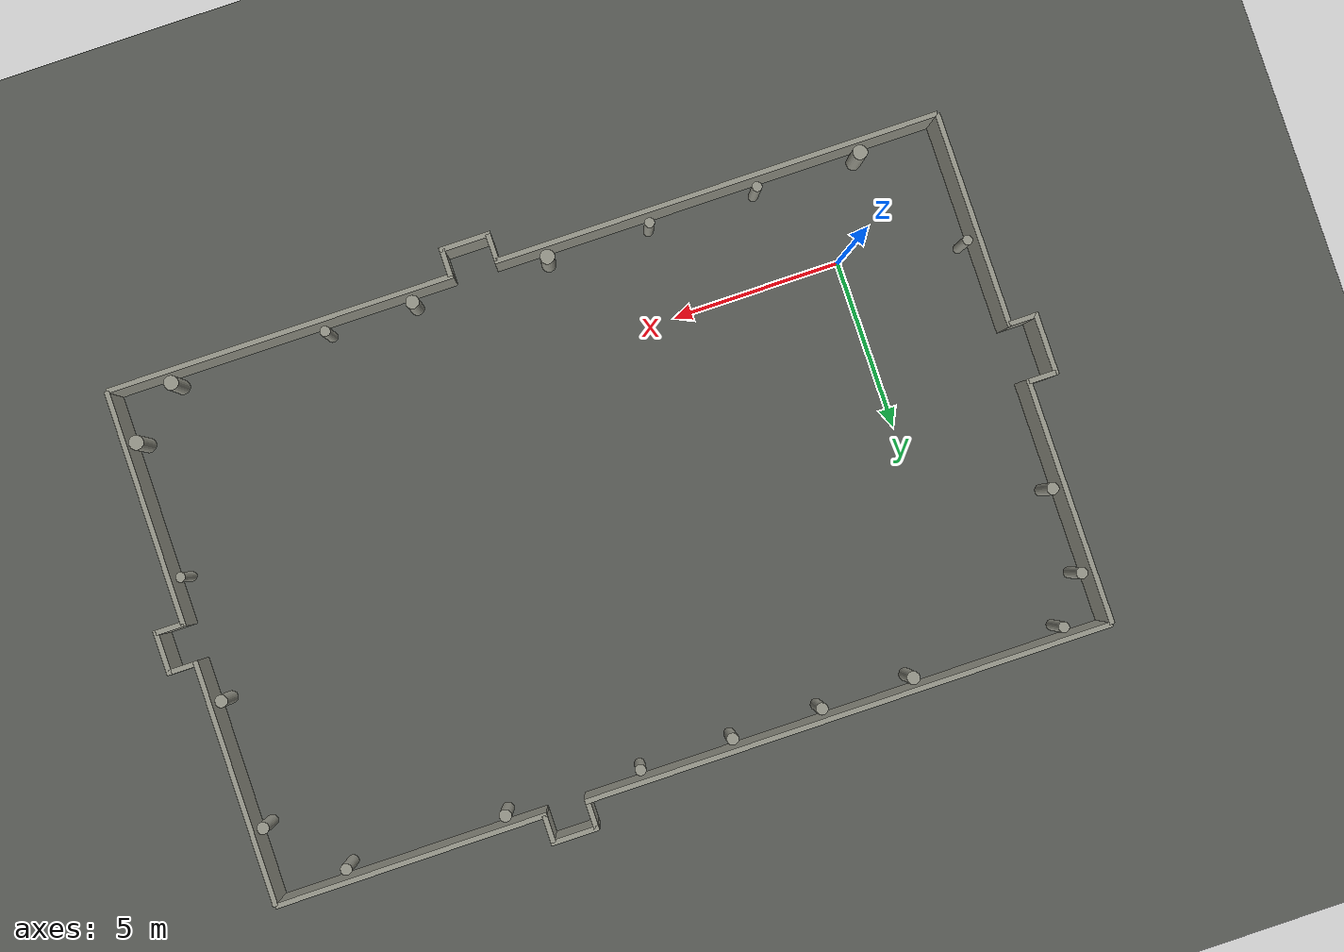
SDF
<sdf version="1.9">
 <world name="default">
  <model name="track_ground">
   <static>true</static>
   <link name="ground_link">
    <collision name="ground_collision">
     <pose>8.340823 4.634097 -0.025000 0.000000 0.000000 0.000000</pose>
     <geometry><box><size>80.000000 80.000000 0.050000</size></box></geometry>
     <surface>
      <friction><ode><mu>1.2</mu><mu2>1.2</mu2></ode></friction>
      <contact><ode><kp>100000.0</kp><kd>10.0</kd></ode></contact>
     </surface>
    </collision>
    <visual name="ground_visual">
     <pose>8.340823 4.634097 -0.025000 0.000000 0.000000 0.000000</pose>
     <geometry><box><size>80.000000 80.000000 0.050000</size></box></geometry>
     <material><ambient>0.35 0.36 0.34 1</ambient><diffuse>0.35 0.36 0.34 1</diffuse></material>
    </visual>
   </link>
  </model>
  <model name="track_room">
   <static>true</static>
   <link name="room_link">
    <collision name="hall_0_0_collision">
     <pose>2.814898 -3.000000 0.600000 0.000000 0.000000 0.000000</pose>
     <geometry><box><size>13.269511 0.150000 1.200000</size></box></geometry>
    </collision>
    <visual name="hall_0_0_visual">
     <pose>2.814898 -3.000000 0.600000 0.000000 0.000000 0.000000</pose>
     <geometry><box><size>13.269511 0.150000 1.200000</size></box></geometry>
     <material><ambient>0.6 0.6 0.55 1</ambient><diffuse>0.6 0.6 0.55 1</diffuse></material>
    </visual>
    <collision name="hall_0_144_collision">
     <pose>15.849699 -3.000000 0.600000 0.000000 0.000000 0.000000</pose>
     <geometry><box><size>10.340784 0.150000 1.200000</size></box></geometry>
    </collision>
    <visual name="hall_0_144_visual">
     <pose>15.849699 -3.000000 0.600000 0.000000 0.000000 0.000000</pose>
     <geometry><box><size>10.340784 0.150000 1.200000</size></box></geometry>
     <material><ambient>0.6 0.6 0.55 1</ambient><diffuse>0.6 0.6 0.55 1</diffuse></material>
    </visual>
    <collision name="hall_niche_0_collision">
     <pose>10.064480 -3.800000 0.600000 0.000000 0.000000 0.000000</pose>
     <geometry><box><size>1.529654 0.150000 1.200000</size></box></geometry>
    </collision>
    <visual name="hall_niche_0_visual">
     <pose>10.064480 -3.800000 0.600000 0.000000 0.000000 0.000000</pose>
     <geometry><box><size>1.529654 0.150000 1.200000</size></box></geometry>
     <material><ambient>0.6 0.6 0.55 1</ambient><diffuse>0.6 0.6 0.55 1</diffuse></material>
    </visual>
    <collision name="hall_jamb_0_-1_collision">
     <pose>9.374653 -3.400000 0.600000 0.000000 0.000000 0.000000</pose>
     <geometry><box><size>0.150000 0.800000 1.200000</size></box></geometry>
    </collision>
    <visual name="hall_jamb_0_-1_visual">
     <pose>9.374653 -3.400000 0.600000 0.000000 0.000000 0.000000</pose>
     <geometry><box><size>0.150000 0.800000 1.200000</size></box></geometry>
     <material><ambient>0.6 0.6 0.55 1</ambient><diffuse>0.6 0.6 0.55 1</diffuse></material>
    </visual>
    <collision name="hall_jamb_0_1_collision">
     <pose>10.754307 -3.400000 0.600000 0.000000 0.000000 0.000000</pose>
     <geometry><box><size>0.150000 0.800000 1.200000</size></box></geometry>
    </collision>
    <visual name="hall_jamb_0_1_visual">
     <pose>10.754307 -3.400000 0.600000 0.000000 0.000000 0.000000</pose>
     <geometry><box><size>0.150000 0.800000 1.200000</size></box></geometry>
     <material><ambient>0.6 0.6 0.55 1</ambient><diffuse>0.6 0.6 0.55 1</diffuse></material>
    </visual>
    <collision name="hall_1_0_collision">
     <pose>21.020091 0.500888 0.600000 0.000000 0.000000 1.570796</pose>
     <geometry><box><size>7.001776 0.150000 1.200000</size></box></geometry>
    </collision>
    <visual name="hall_1_0_visual">
     <pose>21.020091 0.500888 0.600000 0.000000 0.000000 1.570796</pose>
     <geometry><box><size>7.001776 0.150000 1.200000</size></box></geometry>
     <material><ambient>0.6 0.6 0.55 1</ambient><diffuse>0.6 0.6 0.55 1</diffuse></material>
    </visual>
    <collision name="hall_1_80_collision">
     <pose>21.020091 8.650910 0.600000 0.000000 0.000000 1.570796</pose>
     <geometry><box><size>7.244498 0.150000 1.200000</size></box></geometry>
    </collision>
    <visual name="hall_1_80_visual">
     <pose>21.020091 8.650910 0.600000 0.000000 0.000000 1.570796</pose>
     <geometry><box><size>7.244498 0.150000 1.200000</size></box></geometry>
     <material><ambient>0.6 0.6 0.55 1</ambient><diffuse>0.6 0.6 0.55 1</diffuse></material>
    </visual>
    <collision name="hall_niche_1_collision">
     <pose>21.820091 4.515219 0.600000 0.000000 0.000000 1.570796</pose>
     <geometry><box><size>1.326885 0.150000 1.200000</size></box></geometry>
    </collision>
    <visual name="hall_niche_1_visual">
     <pose>21.820091 4.515219 0.600000 0.000000 0.000000 1.570796</pose>
     <geometry><box><size>1.326885 0.150000 1.200000</size></box></geometry>
     <material><ambient>0.6 0.6 0.55 1</ambient><diffuse>0.6 0.6 0.55 1</diffuse></material>
    </visual>
    <collision name="hall_jamb_1_-1_collision">
     <pose>21.420091 3.926776 0.600000 0.000000 0.000000 1.570796</pose>
     <geometry><box><size>0.150000 0.800000 1.200000</size></box></geometry>
    </collision>
    <visual name="hall_jamb_1_-1_visual">
     <pose>21.420091 3.926776 0.600000 0.000000 0.000000 1.570796</pose>
     <geometry><box><size>0.150000 0.800000 1.200000</size></box></geometry>
     <material><ambient>0.6 0.6 0.55 1</ambient><diffuse>0.6 0.6 0.55 1</diffuse></material>
    </visual>
    <collision name="hall_jamb_1_1_collision">
     <pose>21.420091 5.103661 0.600000 0.000000 0.000000 1.570796</pose>
     <geometry><box><size>0.150000 0.800000 1.200000</size></box></geometry>
    </collision>
    <visual name="hall_jamb_1_1_visual">
     <pose>21.420091 5.103661 0.600000 0.000000 0.000000 1.570796</pose>
     <geometry><box><size>0.150000 0.800000 1.200000</size></box></geometry>
     <material><ambient>0.6 0.6 0.55 1</ambient><diffuse>0.6 0.6 0.55 1</diffuse></material>
    </visual>
    <collision name="hall_2_0_collision">
     <pose>17.004132 12.273159 0.600000 0.000000 0.000000 3.141593</pose>
     <geometry><box><size>8.031919 0.150000 1.200000</size></box></geometry>
    </collision>
    <visual name="hall_2_0_visual">
     <pose>17.004132 12.273159 0.600000 0.000000 0.000000 3.141593</pose>
     <geometry><box><size>8.031919 0.150000 1.200000</size></box></geometry>
     <material><ambient>0.6 0.6 0.55 1</ambient><diffuse>0.6 0.6 0.55 1</diffuse></material>
    </visual>
    <collision name="hall_2_91_collision">
     <pose>4.021784 12.273159 0.600000 0.000000 0.000000 3.141593</pose>
     <geometry><box><size>15.683284 0.150000 1.200000</size></box></geometry>
    </collision>
    <visual name="hall_2_91_visual">
     <pose>4.021784 12.273159 0.600000 0.000000 0.000000 3.141593</pose>
     <geometry><box><size>15.683284 0.150000 1.200000</size></box></geometry>
     <material><ambient>0.6 0.6 0.55 1</ambient><diffuse>0.6 0.6 0.55 1</diffuse></material>
    </visual>
    <collision name="hall_niche_2_collision">
     <pose>12.425799 13.073159 0.600000 0.000000 0.000000 3.141593</pose>
     <geometry><box><size>1.424746 0.150000 1.200000</size></box></geometry>
    </collision>
    <visual name="hall_niche_2_visual">
     <pose>12.425799 13.073159 0.600000 0.000000 0.000000 3.141593</pose>
     <geometry><box><size>1.424746 0.150000 1.200000</size></box></geometry>
     <material><ambient>0.6 0.6 0.55 1</ambient><diffuse>0.6 0.6 0.55 1</diffuse></material>
    </visual>
    <collision name="hall_jamb_2_-1_collision">
     <pose>13.063172 12.673159 0.600000 0.000000 0.000000 3.141593</pose>
     <geometry><box><size>0.150000 0.800000 1.200000</size></box></geometry>
    </collision>
    <visual name="hall_jamb_2_-1_visual">
     <pose>13.063172 12.673159 0.600000 0.000000 0.000000 3.141593</pose>
     <geometry><box><size>0.150000 0.800000 1.200000</size></box></geometry>
     <material><ambient>0.6 0.6 0.55 1</ambient><diffuse>0.6 0.6 0.55 1</diffuse></material>
    </visual>
    <collision name="hall_jamb_2_1_collision">
     <pose>11.788426 12.673159 0.600000 0.000000 0.000000 3.141593</pose>
     <geometry><box><size>0.150000 0.800000 1.200000</size></box></geometry>
    </collision>
    <visual name="hall_jamb_2_1_visual">
     <pose>11.788426 12.673159 0.600000 0.000000 0.000000 3.141593</pose>
     <geometry><box><size>0.150000 0.800000 1.200000</size></box></geometry>
     <material><ambient>0.6 0.6 0.55 1</ambient><diffuse>0.6 0.6 0.55 1</diffuse></material>
    </visual>
    <collision name="hall_3_0_collision">
     <pose>-3.819858 8.623453 0.600000 0.000000 0.000000 -1.570796</pose>
     <geometry><box><size>7.299412 0.150000 1.200000</size></box></geometry>
    </collision>
    <visual name="hall_3_0_visual">
     <pose>-3.819858 8.623453 0.600000 0.000000 0.000000 -1.570796</pose>
     <geometry><box><size>7.299412 0.150000 1.200000</size></box></geometry>
     <material><ambient>0.6 0.6 0.55 1</ambient><diffuse>0.6 0.6 0.55 1</diffuse></material>
    </visual>
    <collision name="hall_3_88_collision">
     <pose>-3.819858 0.201437 0.600000 0.000000 0.000000 -1.570796</pose>
     <geometry><box><size>6.402874 0.150000 1.200000</size></box></geometry>
    </collision>
    <visual name="hall_3_88_visual">
     <pose>-3.819858 0.201437 0.600000 0.000000 0.000000 -1.570796</pose>
     <geometry><box><size>6.402874 0.150000 1.200000</size></box></geometry>
     <material><ambient>0.6 0.6 0.55 1</ambient><diffuse>0.6 0.6 0.55 1</diffuse></material>
    </visual>
    <collision name="hall_niche_3_collision">
     <pose>-4.619858 4.188310 0.600000 0.000000 0.000000 -1.570796</pose>
     <geometry><box><size>1.870874 0.150000 1.200000</size></box></geometry>
    </collision>
    <visual name="hall_niche_3_visual">
     <pose>-4.619858 4.188310 0.600000 0.000000 0.000000 -1.570796</pose>
     <geometry><box><size>1.870874 0.150000 1.200000</size></box></geometry>
     <material><ambient>0.6 0.6 0.55 1</ambient><diffuse>0.6 0.6 0.55 1</diffuse></material>
    </visual>
    <collision name="hall_jamb_3_-1_collision">
     <pose>-4.219858 5.048747 0.600000 0.000000 0.000000 -1.570796</pose>
     <geometry><box><size>0.150000 0.800000 1.200000</size></box></geometry>
    </collision>
    <visual name="hall_jamb_3_-1_visual">
     <pose>-4.219858 5.048747 0.600000 0.000000 0.000000 -1.570796</pose>
     <geometry><box><size>0.150000 0.800000 1.200000</size></box></geometry>
     <material><ambient>0.6 0.6 0.55 1</ambient><diffuse>0.6 0.6 0.55 1</diffuse></material>
    </visual>
    <collision name="hall_jamb_3_1_collision">
     <pose>-4.219858 3.327874 0.600000 0.000000 0.000000 -1.570796</pose>
     <geometry><box><size>0.150000 0.800000 1.200000</size></box></geometry>
    </collision>
    <visual name="hall_jamb_3_1_visual">
     <pose>-4.219858 3.327874 0.600000 0.000000 0.000000 -1.570796</pose>
     <geometry><box><size>0.150000 0.800000 1.200000</size></box></geometry>
     <material><ambient>0.6 0.6 0.55 1</ambient><diffuse>0.6 0.6 0.55 1</diffuse></material>
    </visual>
    <collision name="column_0_24_collision">
     <pose>-1.388752 -2.650000 0.600000 0.000000 0.000000 0.000000</pose>
     <geometry><cylinder><radius>0.215649</radius><length>1.200000</length></cylinder></geometry>
    </collision>
    <visual name="column_0_24_visual">
     <pose>-1.388752 -2.650000 0.600000 0.000000 0.000000 0.000000</pose>
     <geometry><cylinder><radius>0.215649</radius><length>1.200000</length></cylinder></geometry>
     <material><ambient>0.6 0.6 0.55 1</ambient><diffuse>0.6 0.6 0.55 1</diffuse></material>
    </visual>
    <collision name="column_0_55_collision">
     <pose>1.699357 -2.650000 0.600000 0.000000 0.000000 0.000000</pose>
     <geometry><cylinder><radius>0.144474</radius><length>1.200000</length></cylinder></geometry>
    </collision>
    <visual name="column_0_55_visual">
     <pose>1.699357 -2.650000 0.600000 0.000000 0.000000 0.000000</pose>
     <geometry><cylinder><radius>0.144474</radius><length>1.200000</length></cylinder></geometry>
     <material><ambient>0.6 0.6 0.55 1</ambient><diffuse>0.6 0.6 0.55 1</diffuse></material>
    </visual>
    <collision name="column_0_87_collision">
     <pose>4.923072 -2.650000 0.600000 0.000000 0.000000 0.000000</pose>
     <geometry><cylinder><radius>0.144636</radius><length>1.200000</length></cylinder></geometry>
    </collision>
    <visual name="column_0_87_visual">
     <pose>4.923072 -2.650000 0.600000 0.000000 0.000000 0.000000</pose>
     <geometry><cylinder><radius>0.144636</radius><length>1.200000</length></cylinder></geometry>
     <material><ambient>0.6 0.6 0.55 1</ambient><diffuse>0.6 0.6 0.55 1</diffuse></material>
    </visual>
    <collision name="column_0_117_collision">
     <pose>7.979928 -2.650000 0.600000 0.000000 0.000000 0.000000</pose>
     <geometry><cylinder><radius>0.212061</radius><length>1.200000</length></cylinder></geometry>
    </collision>
    <visual name="column_0_117_visual">
     <pose>7.979928 -2.650000 0.600000 0.000000 0.000000 0.000000</pose>
     <geometry><cylinder><radius>0.212061</radius><length>1.200000</length></cylinder></geometry>
     <material><ambient>0.6 0.6 0.55 1</ambient><diffuse>0.6 0.6 0.55 1</diffuse></material>
    </visual>
    <collision name="column_0_158_collision">
     <pose>12.013888 -2.650000 0.600000 0.000000 0.000000 0.000000</pose>
     <geometry><cylinder><radius>0.197035</radius><length>1.200000</length></cylinder></geometry>
    </collision>
    <visual name="column_0_158_visual">
     <pose>12.013888 -2.650000 0.600000 0.000000 0.000000 0.000000</pose>
     <geometry><cylinder><radius>0.197035</radius><length>1.200000</length></cylinder></geometry>
     <material><ambient>0.6 0.6 0.55 1</ambient><diffuse>0.6 0.6 0.55 1</diffuse></material>
    </visual>
    <collision name="column_0_184_collision">
     <pose>14.620369 -2.650000 0.600000 0.000000 0.000000 0.000000</pose>
     <geometry><cylinder><radius>0.153036</radius><length>1.200000</length></cylinder></geometry>
    </collision>
    <visual name="column_0_184_visual">
     <pose>14.620369 -2.650000 0.600000 0.000000 0.000000 0.000000</pose>
     <geometry><cylinder><radius>0.153036</radius><length>1.200000</length></cylinder></geometry>
     <material><ambient>0.6 0.6 0.55 1</ambient><diffuse>0.6 0.6 0.55 1</diffuse></material>
    </visual>
    <collision name="column_0_230_collision">
     <pose>19.210519 -2.650000 0.600000 0.000000 0.000000 0.000000</pose>
     <geometry><cylinder><radius>0.214722</radius><length>1.200000</length></cylinder></geometry>
    </collision>
    <visual name="column_0_230_visual">
     <pose>19.210519 -2.650000 0.600000 0.000000 0.000000 0.000000</pose>
     <geometry><cylinder><radius>0.214722</radius><length>1.200000</length></cylinder></geometry>
     <material><ambient>0.6 0.6 0.55 1</ambient><diffuse>0.6 0.6 0.55 1</diffuse></material>
    </visual>
    <collision name="column_1_16_collision">
     <pose>20.670091 -1.352916 0.600000 0.000000 0.000000 0.000000</pose>
     <geometry><cylinder><radius>0.214528</radius><length>1.200000</length></cylinder></geometry>
    </collision>
    <visual name="column_1_16_visual">
     <pose>20.670091 -1.352916 0.600000 0.000000 0.000000 0.000000</pose>
     <geometry><cylinder><radius>0.214528</radius><length>1.200000</length></cylinder></geometry>
     <material><ambient>0.6 0.6 0.55 1</ambient><diffuse>0.6 0.6 0.55 1</diffuse></material>
    </visual>
    <collision name="column_1_56_collision">
     <pose>20.670091 2.655002 0.600000 0.000000 0.000000 0.000000</pose>
     <geometry><cylinder><radius>0.142347</radius><length>1.200000</length></cylinder></geometry>
    </collision>
    <visual name="column_1_56_visual">
     <pose>20.670091 2.655002 0.600000 0.000000 0.000000 0.000000</pose>
     <geometry><cylinder><radius>0.142347</radius><length>1.200000</length></cylinder></geometry>
     <material><ambient>0.6 0.6 0.55 1</ambient><diffuse>0.6 0.6 0.55 1</diffuse></material>
    </visual>
    <collision name="column_1_93_collision">
     <pose>20.670091 6.334511 0.600000 0.000000 0.000000 0.000000</pose>
     <geometry><cylinder><radius>0.183271</radius><length>1.200000</length></cylinder></geometry>
    </collision>
    <visual name="column_1_93_visual">
     <pose>20.670091 6.334511 0.600000 0.000000 0.000000 0.000000</pose>
     <geometry><cylinder><radius>0.183271</radius><length>1.200000</length></cylinder></geometry>
     <material><ambient>0.6 0.6 0.55 1</ambient><diffuse>0.6 0.6 0.55 1</diffuse></material>
    </visual>
    <collision name="column_1_130_collision">
     <pose>20.670091 10.088768 0.600000 0.000000 0.000000 0.000000</pose>
     <geometry><cylinder><radius>0.175561</radius><length>1.200000</length></cylinder></geometry>
    </collision>
    <visual name="column_1_130_visual">
     <pose>20.670091 10.088768 0.600000 0.000000 0.000000 0.000000</pose>
     <geometry><cylinder><radius>0.175561</radius><length>1.200000</length></cylinder></geometry>
     <material><ambient>0.6 0.6 0.55 1</ambient><diffuse>0.6 0.6 0.55 1</diffuse></material>
    </visual>
    <collision name="column_2_22_collision">
     <pose>18.816557 11.923159 0.600000 0.000000 0.000000 0.000000</pose>
     <geometry><cylinder><radius>0.166818</radius><length>1.200000</length></cylinder></geometry>
    </collision>
    <visual name="column_2_22_visual">
     <pose>18.816557 11.923159 0.600000 0.000000 0.000000 0.000000</pose>
     <geometry><cylinder><radius>0.166818</radius><length>1.200000</length></cylinder></geometry>
     <material><ambient>0.6 0.6 0.55 1</ambient><diffuse>0.6 0.6 0.55 1</diffuse></material>
    </visual>
    <collision name="column_2_69_collision">
     <pose>14.102316 11.923159 0.600000 0.000000 0.000000 0.000000</pose>
     <geometry><cylinder><radius>0.178106</radius><length>1.200000</length></cylinder></geometry>
    </collision>
    <visual name="column_2_69_visual">
     <pose>14.102316 11.923159 0.600000 0.000000 0.000000 0.000000</pose>
     <geometry><cylinder><radius>0.178106</radius><length>1.200000</length></cylinder></geometry>
     <material><ambient>0.6 0.6 0.55 1</ambient><diffuse>0.6 0.6 0.55 1</diffuse></material>
    </visual>
    <collision name="column_2_109_collision">
     <pose>10.094782 11.923159 0.600000 0.000000 0.000000 0.000000</pose>
     <geometry><cylinder><radius>0.158181</radius><length>1.200000</length></cylinder></geometry>
    </collision>
    <visual name="column_2_109_visual">
     <pose>10.094782 11.923159 0.600000 0.000000 0.000000 0.000000</pose>
     <geometry><cylinder><radius>0.158181</radius><length>1.200000</length></cylinder></geometry>
     <material><ambient>0.6 0.6 0.55 1</ambient><diffuse>0.6 0.6 0.55 1</diffuse></material>
    </visual>
    <collision name="column_2_136_collision">
     <pose>7.359302 11.923159 0.600000 0.000000 0.000000 0.000000</pose>
     <geometry><cylinder><radius>0.172685</radius><length>1.200000</length></cylinder></geometry>
    </collision>
    <visual name="column_2_136_visual">
     <pose>7.359302 11.923159 0.600000 0.000000 0.000000 0.000000</pose>
     <geometry><cylinder><radius>0.172685</radius><length>1.200000</length></cylinder></geometry>
     <material><ambient>0.6 0.6 0.55 1</ambient><diffuse>0.6 0.6 0.55 1</diffuse></material>
    </visual>
    <collision name="column_2_163_collision">
     <pose>4.708701 11.923159 0.600000 0.000000 0.000000 0.000000</pose>
     <geometry><cylinder><radius>0.173585</radius><length>1.200000</length></cylinder></geometry>
    </collision>
    <visual name="column_2_163_visual">
     <pose>4.708701 11.923159 0.600000 0.000000 0.000000 0.000000</pose>
     <geometry><cylinder><radius>0.173585</radius><length>1.200000</length></cylinder></geometry>
     <material><ambient>0.6 0.6 0.55 1</ambient><diffuse>0.6 0.6 0.55 1</diffuse></material>
    </visual>
    <collision name="column_2_190_collision">
     <pose>1.984080 11.923159 0.600000 0.000000 0.000000 0.000000</pose>
     <geometry><cylinder><radius>0.188981</radius><length>1.200000</length></cylinder></geometry>
    </collision>
    <visual name="column_2_190_visual">
     <pose>1.984080 11.923159 0.600000 0.000000 0.000000 0.000000</pose>
     <geometry><cylinder><radius>0.188981</radius><length>1.200000</length></cylinder></geometry>
     <material><ambient>0.6 0.6 0.55 1</ambient><diffuse>0.6 0.6 0.55 1</diffuse></material>
    </visual>
    <collision name="column_2_235_collision">
     <pose>-2.494435 11.923159 0.600000 0.000000 0.000000 0.000000</pose>
     <geometry><cylinder><radius>0.156994</radius><length>1.200000</length></cylinder></geometry>
    </collision>
    <visual name="column_2_235_visual">
     <pose>-2.494435 11.923159 0.600000 0.000000 0.000000 0.000000</pose>
     <geometry><cylinder><radius>0.156994</radius><length>1.200000</length></cylinder></geometry>
     <material><ambient>0.6 0.6 0.55 1</ambient><diffuse>0.6 0.6 0.55 1</diffuse></material>
    </visual>
    <collision name="column_3_16_collision">
     <pose>-3.469858 10.647041 0.600000 0.000000 0.000000 0.000000</pose>
     <geometry><cylinder><radius>0.167635</radius><length>1.200000</length></cylinder></geometry>
    </collision>
    <visual name="column_3_16_visual">
     <pose>-3.469858 10.647041 0.600000 0.000000 0.000000 0.000000</pose>
     <geometry><cylinder><radius>0.167635</radius><length>1.200000</length></cylinder></geometry>
     <material><ambient>0.6 0.6 0.55 1</ambient><diffuse>0.6 0.6 0.55 1</diffuse></material>
    </visual>
    <collision name="column_3_41_collision">
     <pose>-3.469858 8.129496 0.600000 0.000000 0.000000 0.000000</pose>
     <geometry><cylinder><radius>0.175530</radius><length>1.200000</length></cylinder></geometry>
    </collision>
    <visual name="column_3_41_visual">
     <pose>-3.469858 8.129496 0.600000 0.000000 0.000000 0.000000</pose>
     <geometry><cylinder><radius>0.175530</radius><length>1.200000</length></cylinder></geometry>
     <material><ambient>0.6 0.6 0.55 1</ambient><diffuse>0.6 0.6 0.55 1</diffuse></material>
    </visual>
    <collision name="column_3_115_collision">
     <pose>-3.469858 0.695228 0.600000 0.000000 0.000000 0.000000</pose>
     <geometry><cylinder><radius>0.141656</radius><length>1.200000</length></cylinder></geometry>
    </collision>
    <visual name="column_3_115_visual">
     <pose>-3.469858 0.695228 0.600000 0.000000 0.000000 0.000000</pose>
     <geometry><cylinder><radius>0.141656</radius><length>1.200000</length></cylinder></geometry>
     <material><ambient>0.6 0.6 0.55 1</ambient><diffuse>0.6 0.6 0.55 1</diffuse></material>
    </visual>
   </link>
  </model>
 </world>
</sdf>
